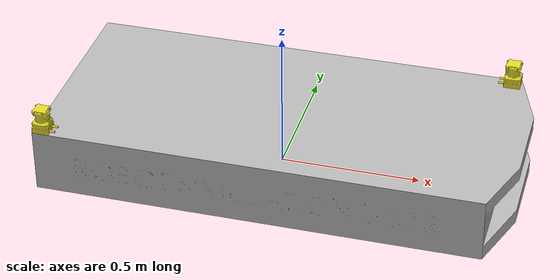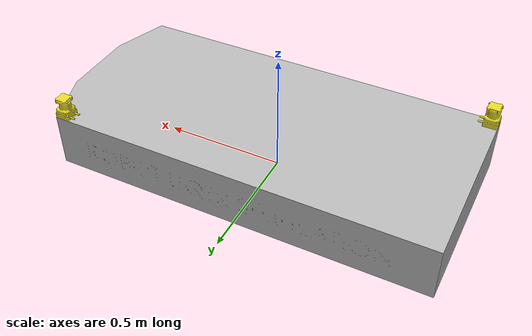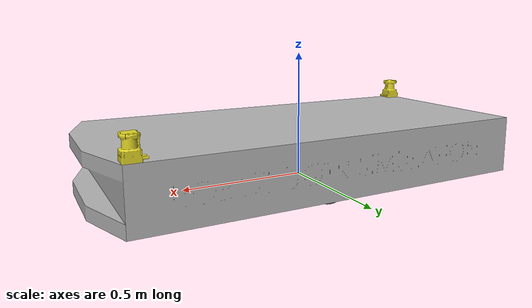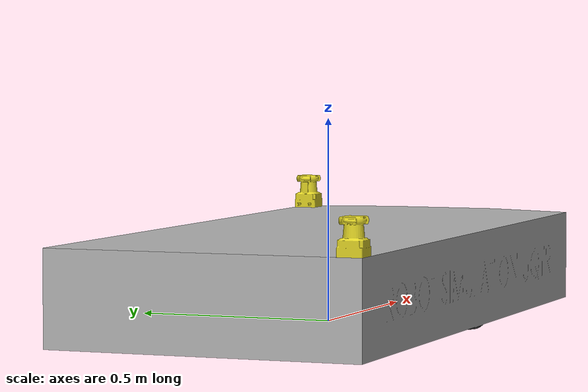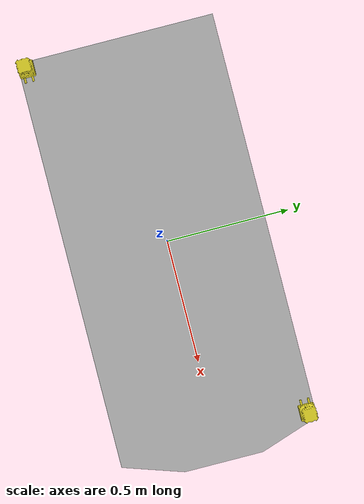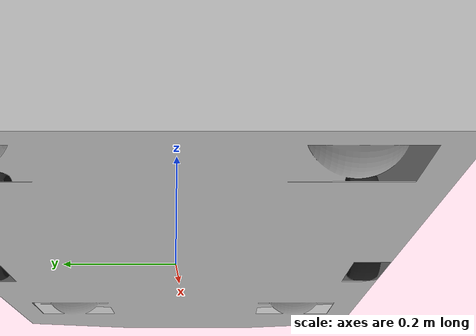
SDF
<sdf version='1.6'>
  <model name='Uqtr_Robot'>
    <link name='base_link'>
      <pose frame=''>0 0 0 0 -0 0</pose>
      <inertial>
        <pose frame=''>0.001632 0.000661 0.002976 0 -0 0</pose>
        <mass>50.0764</mass>
        <inertia>
          <ixx>1.17773</ixx>
          <ixy>-0.15037</ixy>
          <ixz>0.0670675</ixz>
          <iyy>4.92287</iyy>
          <iyz>-0.00928362</iyz>
          <izz>5.70125</izz>
        </inertia>
      </inertial>
      <collision name='base_link_fixed_joint_lump__chassis_collision'>
        <pose frame=''>0 0 0 0 -0 0</pose>
        <geometry>
          <mesh>
            <scale>1 1 1</scale>
            <uri>model://Uqtr_Robot/meshes/chassis.dae</uri>
          </mesh>
        </geometry>
        <surface>
          <contact>
            <ode/>
          </contact>
          <friction>
            <ode>
              <mu>0</mu>
              <mu2>0</mu2>
            </ode>
          </friction>
        </surface>
      </collision>
      <collision name='base_link_fixed_joint_lump__adis1647x_pcb_collision_1'>
        <pose frame=''>0 0 0.00122 0 -0 0</pose>
        <geometry>
          <mesh>
            <scale>1 1 1</scale>
            <uri>model://Uqtr_Robot/meshes/adis1647x_pcb.STL</uri>
          </mesh>
        </geometry>
      </collision>
      <collision name='base_link_fixed_joint_lump__capteur_laser_arriere_collision_2'>
        <pose frame=''>-0.76419 -0.351 0.28335 0 -0 0</pose>
        <geometry>
          <mesh>
            <scale>1 1 1</scale>
            <uri>model://Uqtr_Robot/meshes/capteur_laser_arriere.STL</uri>
          </mesh>
        </geometry>
        <surface>
          <contact>
            <ode/>
          </contact>
          <friction>
            <ode/>
          </friction>
        </surface>
      </collision>
      <collision name='base_link_fixed_joint_lump__capteur_laser_avant_collision_3'>
        <pose frame=''>0.76419 0.351 0.28335 0 -0 0</pose>
        <geometry>
          <mesh>
            <scale>1 1 1</scale>
            <uri>model://Uqtr_Robot/meshes/capteur_laser_avant.STL</uri>
          </mesh>
        </geometry>
        <surface>
          <contact>
            <ode/>
          </contact>
          <friction>
            <ode/>
          </friction>
        </surface>
      </collision>
      <visual name='base_link_fixed_joint_lump__chassis_visual'>
        <pose frame=''>0 0 0 0 -0 0</pose>
        <geometry>
          <mesh>
            <scale>1 1 1</scale>
            <uri>model://Uqtr_Robot/meshes/chassis.dae</uri>
          </mesh>
        </geometry>
        <material>
          <script>
            <uri>__default__</uri>
            <name>__default__</name>
          </script>
        </material>
      </visual>
      <visual name='base_link_fixed_joint_lump__adis1647x_pcb_visual_1'>
        <pose frame=''>0 0 0.00122 0 -0 0</pose>
        <geometry>
          <mesh>
            <scale>1 1 1</scale>
            <uri>model://Uqtr_Robot/meshes/adis1647x_pcb.STL</uri>
          </mesh>
        </geometry>
      </visual>
      <visual name='base_link_fixed_joint_lump__capteur_laser_arriere_visual_2'>
        <pose frame=''>-0.76419 -0.351 0.28335 0 -0 0</pose>
        <geometry>
          <mesh>
            <scale>1 1 1</scale>
            <uri>model://Uqtr_Robot/meshes/capteur_laser_arriere.STL</uri>
          </mesh>
        </geometry>
        <material>
          <script>
            <name>Gazebo/Yellow</name>
            <uri>file://media/materials/scripts/gazebo.material</uri>
          </script>
        </material>
      </visual>
      <visual name='base_link_fixed_joint_lump__capteur_laser_avant_visual_3'>
        <pose frame=''>0.76419 0.351 0.28335 0 -0 0</pose>
        <geometry>
          <mesh>
            <scale>1 1 1</scale>
            <uri>model://Uqtr_Robot/meshes/capteur_laser_avant.STL</uri>
          </mesh>
        </geometry>
        <material>
          <script>
            <name>Gazebo/Yellow</name>
            <uri>file://media/materials/scripts/gazebo.material</uri>
          </script>
        </material>
      </visual>
      <velocity_decay/>
      <velocity_decay/>
      <velocity_decay/>
      <velocity_decay/>
      <sensor name='chassis_hokuyo_sensor_arr' type='ray'>
        <visualize>0</visualize>
        <update_rate>20</update_rate>
        <ray>
          <scan>
            <horizontal>
              <samples>720</samples>
              <resolution>1</resolution>
              <min_angle>-5.67232</min_angle>
              <max_angle>-0.785398</max_angle>
            </horizontal>
          </scan>
          <range>
            <min>0.1</min>
            <max>40</max>
            <resolution>0.001</resolution>
          </range>
          <noise>
            <type>gaussian</type>
            <mean>0</mean>
            <stddev>0.01</stddev>
          </noise>
        </ray>
        <plugin name='gazebo_ros_head_hokuyo_controller' filename='libgazebo_ros_laser.so'>
          <topicName>/scan_arriere</topicName>
          <frameName>capteur_laser_arriere</frameName>
        </plugin>
        <pose frame=''>-0.76419 -0.351 0.28335 0 -0 0</pose>
      </sensor>
      <velocity_decay/>
      <gravity>1</gravity>
      <velocity_decay/>
      <sensor name='chassis_hokuyo_sensor' type='ray'>
        <visualize>0</visualize>
        <update_rate>20</update_rate>
        <ray>
          <scan>
            <horizontal>
              <samples>720</samples>
              <resolution>1</resolution>
              <min_angle>-2.35619</min_angle>
              <max_angle>2.35619</max_angle>
            </horizontal>
          </scan>
          <range>
            <min>0.1</min>
            <max>40</max>
            <resolution>0.1</resolution>
          </range>
          <noise>
            <type>gaussian</type>
            <mean>0</mean>
            <stddev>0.01</stddev>
          </noise>
        </ray>
        <plugin name='gazebo_ros_head_hokuyo_controller' filename='libgazebo_ros_laser.so'>
          <topicName>/scan_avant</topicName>
          <frameName>capteur_laser_avant</frameName>
        </plugin>
        <pose frame=''>0.76419 0.351 0.28335 0 -0 0</pose>
      </sensor>
    </link>
    <link name='roue_motrice_droite'>
      <pose frame=''>0.074873 -0.34278 0.086706 0 -0 0</pose>
      <inertial>
        <pose frame=''>0 0 0 0 -0 0</pose>
        <mass>1.3118</mass>
        <inertia>
          <ixx>0.00367245</ixx>
          <ixy>0</ixy>
          <ixz>0</ixz>
          <iyy>0.00367245</iyy>
          <iyz>0</iyz>
          <izz>0.00677057</izz>
        </inertia>
      </inertial>
      <collision name='roue_motrice_droite_collision'>
        <pose frame=''>0 0 0 0 -0 0</pose>
        <geometry>
          <mesh>
            <scale>1 1 1</scale>
            <uri>model://Uqtr_Robot/meshes/roue_motrice_droite.STL</uri>
          </mesh>
        </geometry>
        <surface>
          <contact>
            <ode>
              <kp>1e+06</kp>
              <kd>1</kd>
            </ode>
          </contact>
          <friction>
            <ode>
              <mu>449</mu>
              <mu2>449</mu2>
            </ode>
          </friction>
        </surface>
      </collision>
      <visual name='roue_motrice_droite_visual'>
        <pose frame=''>0 0 0 0 -0 0</pose>
        <geometry>
          <mesh>
            <scale>1 1 1</scale>
            <uri>model://Uqtr_Robot/meshes/roue_motrice_droite.STL</uri>
          </mesh>
        </geometry>
        <material>
          <script>
            <name>Gazebo/Black</name>
            <uri>file://media/materials/scripts/gazebo.material</uri>
          </script>
        </material>
      </visual>
      <velocity_decay/>
      <gravity>1</gravity>
      <velocity_decay/>
    </link>
    <joint name='chassis_roue_motrice_droite' type='revolute'>
      <child>roue_motrice_droite</child>
      <parent>base_link</parent>
      <axis>
        <xyz>0 1 0</xyz>
        <limit>
          <lower>-1e+16</lower>
          <upper>1e+16</upper>
        </limit>
        <dynamics>
          <damping>0</damping>
          <friction>0</friction>
          <spring_reference>0</spring_reference>
          <spring_stiffness>0</spring_stiffness>
        </dynamics>
        <use_parent_model_frame>1</use_parent_model_frame>
      </axis>
    </joint>
    <link name='roue_motrice_gauche'>
      <pose frame=''>0.074873 0.34278 0.086706 0 -0 0</pose>
      <inertial>
        <pose frame=''>0 0 0 0 -0 0</pose>
        <mass>1.3118</mass>
        <inertia>
          <ixx>0.00367245</ixx>
          <ixy>0</ixy>
          <ixz>0</ixz>
          <iyy>0.00367245</iyy>
          <iyz>0</iyz>
          <izz>0.00677057</izz>
        </inertia>
      </inertial>
      <collision name='roue_motrice_gauche_collision'>
        <pose frame=''>0 0 0 0 -0 0</pose>
        <geometry>
          <mesh>
            <scale>1 1 1</scale>
            <uri>model://Uqtr_Robot/meshes/roue_motrice_gauche.STL</uri>
          </mesh>
        </geometry>
        <surface>
          <contact>
            <ode>
              <kp>1e+06</kp>
              <kd>1</kd>
            </ode>
          </contact>
          <friction>
            <ode>
              <mu>449</mu>
              <mu2>449</mu2>
            </ode>
          </friction>
        </surface>
      </collision>
      <visual name='roue_motrice_gauche_visual'>
        <pose frame=''>0 0 0 0 -0 0</pose>
        <geometry>
          <mesh>
            <scale>1 1 1</scale>
            <uri>model://Uqtr_Robot/meshes/roue_motrice_gauche.STL</uri>
          </mesh>
        </geometry>
        <material>
          <script>
            <name>Gazebo/Black</name>
            <uri>file://media/materials/scripts/gazebo.material</uri>
          </script>
        </material>
      </visual>
      <velocity_decay/>
      <gravity>1</gravity>
      <velocity_decay/>
    </link>
    <joint name='chassis_roue_motrice_gauche' type='revolute'>
      <child>roue_motrice_gauche</child>
      <parent>base_link</parent>
      <axis>
        <xyz>0 1 0</xyz>
        <limit>
          <lower>-1e+16</lower>
          <upper>1e+16</upper>
        </limit>
        <dynamics>
          <damping>0</damping>
          <friction>0</friction>
          <spring_reference>0</spring_reference>
          <spring_stiffness>0</spring_stiffness>
        </dynamics>
        <use_parent_model_frame>1</use_parent_model_frame>
      </axis>
    </joint>
    <plugin name='imu_plugin' filename='libgazebo_ros_imu.so'>
      <alwaysOn>1</alwaysOn>
      <topicName>imu</topicName>
      <serviceName>imu_service</serviceName>
      <gaussianNoise>0.0</gaussianNoise>
      <updateRate>20.0</updateRate>
      <bodyName>base_link</bodyName>
      <xyzOffset>0 0 -0.00122</xyzOffset>
      <rpyOffset>0 -0 0</rpyOffset>
    </plugin>
    <static>0</static>
    <plugin name='differential_drive_controller' filename='libgazebo_ros_diff_drive.so'>
      <alwaysOn>1</alwaysOn>
      <legacyMode>0</legacyMode>
      <updateRate>100</updateRate>
      <leftJoint>chassis_roue_motrice_gauche</leftJoint>
      <rightJoint>chassis_roue_motrice_droite</rightJoint>
      <wheelSeparation>0.6855600</wheelSeparation>
      <wheelDiameter>0.2032000</wheelDiameter>
      <torque>20</torque>
      <commandTopic>Uqtr_Robot/diff_drive_controller/cmd_vel</commandTopic>
      <odometryTopic>Uqtr_Robot/diff_drive_controller/odom</odometryTopic>
      <odometryFrame>odom</odometryFrame>
      <odometrySource>world</odometrySource>
      <publishOdomTF>0</publishOdomTF>
      <publishTf>1</publishTf>
      <rosDebugLevel>na</rosDebugLevel>
      <robotBaseFrame>base_link</robotBaseFrame>
      <publishWheelTF>1</publishWheelTF>
      <publishWheelJointState>0</publishWheelJointState>
    </plugin>
  </model>
</sdf>
